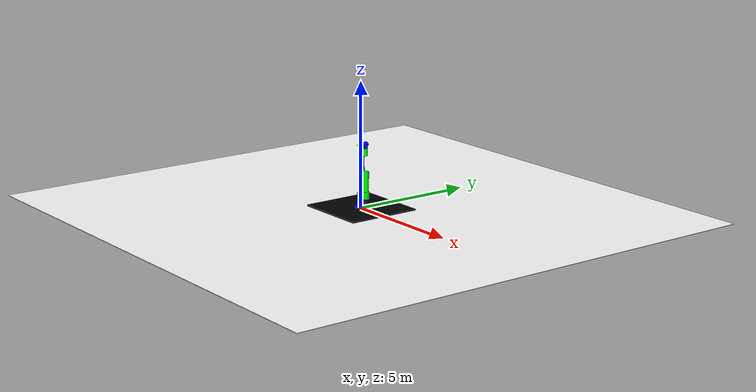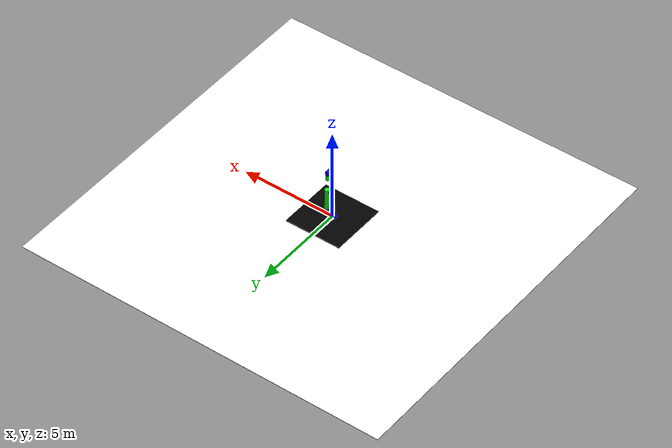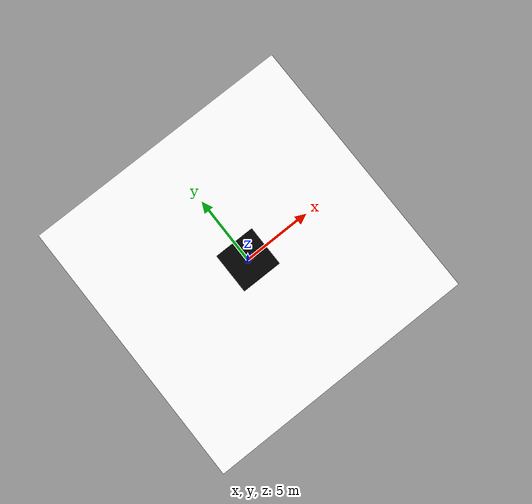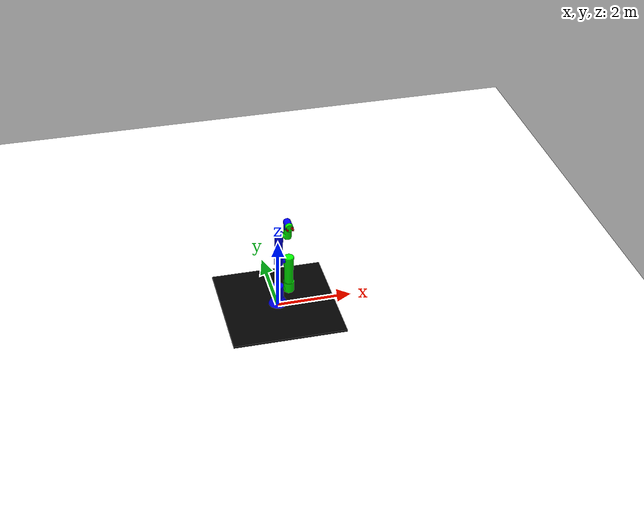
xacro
<?xml version="1.0"?>
<robot name="arm" xmlns:xacro="http://ros.org/wiki/xacro">

    <!-- Defining the colors used in this robot -->
    <material name="Black">
        <color rgba="0 0 0 1"/>
    </material>

    <material name="White">
        <color rgba="1 1 1 1"/>
    </material>

    <material name="Green">
        <color rgba="0 1 0 1"/>
    </material>

    <material name="Blue">
        <color rgba="0 0 1 1"/>
    </material>

    <material name="Red">
        <color rgba="1 0 0 1"/>
    </material>

    <material name="Hide">
        <color rgba="1 1 1 0"/>
    </material>

    <!-- Constants -->
    <xacro:property name="M_PI" value="3.14159"/>

    <!-- Gripper frame -->
    <xacro:property name="grasp_frame_radius" value="0.001" />

    <!-- ///////////////////////////////////////   bottom_joint   ////////////////////////////////////////// -->
    <link name="bottom_link">
	   <inertial>
		  <origin
		    xyz="4.6828E-17 0.024867 -2.2438E-16"
		    rpy="0 0 0" />
		  <mass
		    value="444.11" />
		  <inertia
		    ixx="337.5"
		    ixy="3.3871E-16"
		    ixz="-3.6082E-14"
		    iyy="674.82"
		    iyz="1.3219E-17"
		    izz="337.5" />
		</inertial>
        <visual>
              <origin xyz=" 0 0 -0.05"  rpy="0 0 0"/>
                  <geometry>
                       <box size="20 20 0.02" />
                  </geometry>
              <material name="Hide" />
        </visual>
        <collision>
            <origin xyz=" 0 0 -0.02"  rpy="0 0 0"/>
            <geometry>
                <box size="20 20 0.05" />
            </geometry>
        </collision>
    </link>

    <joint name="bottom_joint" type="fixed">
        <origin xyz="0 0 0" rpy="0 0 0" />
        <parent link="base_link"/>
        <child link="bottom_link"/>
    </joint>

  <link name="base_link">
     <visual>
      <origin
        xyz="0 0 0"
        rpy="0 0 0" />
      <geometry>
        <mesh
          filename="package://marm_description/meshes/base_link.STL" />
      </geometry>
      <material
        name="Black">
        <color
          rgba="0 0 0 1" />
      </material>
    </visual>
    <collision>
      <origin
        xyz="0 0 0"
        rpy="0 0 0" />
      <geometry>
        <mesh
          filename="package://marm_description/meshes/base_link.STL" />
      </geometry>
    </collision>
  </link>
  <link
    name="link1">
    <inertial>
      <origin
        xyz="3.491E-07 -0.0028335 -0.01492"
        rpy="0 0 0" />
      <mass
        value="57.966" />
      <inertia
        ixx="2.5483"
        ixy="-9.0628E-07"
        ixz="1.5304E-06"
        iyy="2.5639"
        iyz="-0.04354"
        izz="1.0444" />
    </inertial>
    <visual>
      <origin
        xyz="0 0 0"
        rpy="0 0 0" />
      <geometry>
        <mesh
          filename="package://marm_description/meshes/link1.STL" />
      </geometry>
      <material
        name="Blue">
        <color
          rgba="0 0 1 1" />
      </material>
    </visual>
    <collision>
      <origin
        xyz="0 0 0"
        rpy="0 0 0" />
      <geometry>
        <mesh
          filename="package://marm_description/meshes/link1.STL" />
      </geometry>
    </collision>
  </link>

  <joint name="joint1"  type="revolute">
    <origin
      xyz="0 0 0.25"
      rpy="3.1416 6.123E-17 1.5708" />
    <parent
      link="base_link" />
    <child
      link="link1" />
    <axis
      xyz="0 0 -1" />
    <limit
      lower="-3.14"
      upper="3.14"
      effort="300"
      velocity="1" />
    <dynamics
      damping="50"
      friction="1" />
  </joint>
  <link
    name="link2">
    <inertial>
      <origin
        xyz="0.0040645 0.50746 2.9447E-08"
        rpy="0 0 0" />
      <mass
        value="57.425" />
      <inertia
        ixx="6.4378"
        ixy="0.19842"
        ixz="-9.7817E-07"
        iyy="0.53245"
        iyz="3.2831E-07"
        izz="6.4921" />
    </inertial>
    <visual>
      <origin
        xyz="0 -0.1 0"
        rpy="0 0 0" />
      <geometry>
        <mesh
          filename="package://marm_description/meshes/link2.STL" />
      </geometry>
      <material
        name="Green">
        <color
          rgba="0 1 0 1" />
      </material>
    </visual>
    <collision>
      <origin
        xyz="0 -0.1 0"
        rpy="0 0 0" />
      <geometry>
        <mesh
          filename="package://marm_description/meshes/link2.STL" />
      </geometry>
    </collision>
  </link>
  <joint
    name="joint2"
    type="revolute">
    <origin
      xyz="0 0.29 -0.28"
      rpy="-1.5708 0 -1.5708" />
    <parent
      link="link1" />
    <child
      link="link2" />
    <axis
      xyz="1 0 0" />
    <limit
      lower="-1.6"
      upper="1.6"
      effort="300"
      velocity="1" />
    <dynamics
      damping="50"
      friction="1" />
  </joint>
  <link
    name="link3">
    <inertial>
      <origin
        xyz="0.0062688 0.45093 -5.9347E-09"
        rpy="0 0 0" />
      <mass
        value="38.36" />
      <inertia
        ixx="3.5596"
        ixy="0.1423"
        ixz="-1.094E-06"
        iyy="0.27636"
        iyz="2.6943E-07"
        izz="3.6045" />
    </inertial>
    <visual>
      <origin
        xyz="0 -0.1 0"
        rpy="0 0 0" />
      <geometry>
        <mesh
          filename="package://marm_description/meshes/link3.STL" />
      </geometry>
      <material
        name="Blue">
        <color
          rgba="0 0 1 1" />
      </material>
    </visual>
    <collision>
      <origin
        xyz="0 -0.1 0"
        rpy="0 0 0" />
      <geometry>
        <mesh
          filename="package://marm_description/meshes/link3.STL" />
      </geometry>
    </collision>
  </link>
  <joint
    name="joint3"
    type="revolute">
    <origin
      xyz="0.27 0.9 0"
      rpy="-3.1416 0 3.1416" />
    <parent
      link="link2" />
    <child
      link="link3" />
    <axis
      xyz="1 0 0" />
    <limit
      lower="-2.62"
      upper="2.62"
      effort="300"
      velocity="1" />
    <dynamics
      damping="50"
      friction="1" />
  </joint>
  <link
    name="link4">
    <inertial>
      <origin
        xyz="8.6704E-09 -0.13203 -0.020954"
        rpy="0 0 0" />
      <mass
        value="10.038" />
      <inertia
        ixx="0.10563"
        ixy="-1.3415E-07"
        ixz="-4.5282E-08"
        iyy="0.071748"
        iyz="0.0067371"
        izz="0.082807" />
    </inertial>
    <visual>
      <origin
        xyz="0 0.1 0"
        rpy="0 0 0" />
      <geometry>
        <mesh
          filename="package://marm_description/meshes/link4.STL" />
      </geometry>
      <material
        name="Green">
        <color
          rgba="0 1 0 1" />
      </material>
    </visual>
    <collision>
      <origin
        xyz="0 0.1 0"
        rpy="0 0 0" />
      <geometry>
        <mesh
          filename="package://marm_description/meshes/link4.STL" />
      </geometry>
    </collision>
  </link>
  <joint
    name="joint4"
    type="revolute">
    <origin
      xyz="0.23 0.8 0"
      rpy="1.5708 -1.5708 1.5708" />
    <parent
      link="link3" />
    <child
      link="link4" />
    <axis
      xyz="0 0 -1" />
    <limit
      lower="-2.62"
      upper="2.62"
      effort="300"
      velocity="1" />
    <dynamics
      damping="50"
      friction="1" />
  </joint>
  <link
    name="link5">
    <inertial>
      <origin
        xyz="1.1124E-08 0.10421 0.041487"
        rpy="0 0 0" />
      <mass
        value="9.417" />
      <inertia
        ixx="0.087332"
        ixy="2.1223E-08"
        ixz="-5.3766E-09"
        iyy="0.08101"
        iyz="0.001687"
        izz="0.055716" />
    </inertial>
    <visual>
      <origin
        xyz="0 -0.1 0"
        rpy="0 ${M_PI} 0" />
      <geometry>
        <mesh
          filename="package://marm_description/meshes/link5.STL" />
      </geometry>
      <material
        name="Blue">
        <color
          rgba="0 0 1 1" />
      </material>
    </visual>
    <collision>
      <origin
        xyz="0 -0.1 0"
        rpy="0 ${M_PI} 0" />
      <geometry>
        <mesh
          filename="package://marm_description/meshes/link5.STL" />
      </geometry>
    </collision>
  </link>
  <joint
    name="joint5"
    type="revolute">
    <origin
      xyz="0 -0.35 0"
      rpy="1.5708 1.5708 0" />
    <parent
      link="link4" />
    <child
      link="link5" />
    <axis
      xyz="0 0 -1" />
    <limit
      lower="-2.62"
      upper="2.62"
      effort="300"
      velocity="1" />
    <dynamics
      damping="50"
      friction="1" />
  </joint>
  <link
    name="link6">
    <inertial>
      <origin
        xyz="-0.0011743 0.077144 0"
        rpy="0 0 0" />
      <mass
        value="3.7469" />
      <inertia
        ixx="0.015466"
        ixy="0.00027657"
        ixz="2.288E-20"
        iyy="0.017439"
        iyz="-3.248E-18"
        izz="0.014407" />
    </inertial>
    <visual>
      <origin
        xyz="0 0 0"
        rpy="0 0 0" />
      <geometry>
        <mesh
          filename="package://marm_description/meshes/link6.STL" />
      </geometry>
      <material
        name="Green">
        <color
          rgba="0 1 0 1" />
      </material>
    </visual>
    <collision>
      <origin
        xyz="0 0 0"
        rpy="0 0 0" />
      <geometry>
        <mesh
          filename="package://marm_description/meshes/link6.STL" />
      </geometry>
    </collision>
  </link>
  <joint
    name="joint6"
    type="revolute">
    <origin
      xyz="0 0.09 0"
      rpy="3.1416 0 3.1416" />
    <parent
      link="link5" />
    <child
      link="link6" />
    <axis
      xyz="0 1 0" />
    <limit
      lower="-6.28"
      upper="6.28"
      effort="300"
      velocity="1" />
    <dynamics
      damping="50"
      friction="1" />
  </joint>
  <link
    name="gripper_finger_link1">
    <inertial>
      <origin
        xyz="-0.0093713 0 -0.02594"
        rpy="0 0 0" />
      <mass
        value="0.1702" />
      <inertia
        ixx="0.00015552"
        ixy="-1.8125E-19"
        ixz="-5.2101E-05"
        iyy="0.00028579"
        iyz="1.2019E-19"
        izz="0.00028702" />
    </inertial>
    <visual>
      <origin
        xyz="0 0 0"
        rpy="0 0 0" />
      <geometry>
        <mesh
          filename="package://marm_description/meshes/gripper_finger_link1.STL" />
      </geometry>
      <material
        name="Red">
        <color
          rgba="1 0 0 1" />
      </material>
    </visual>
    <collision>
      <origin
        xyz="0 0 0"
        rpy="0 0 0" />
      <geometry>
        <mesh
          filename="package://marm_description/meshes/gripper_finger_link1.STL" />
      </geometry>
    </collision>
  </link>
  <joint
    name="finger_joint1"
    type="prismatic">
    <origin
      xyz="0.09 0.15 0"
      rpy="1.5708 0 1.5708" />
    <parent
      link="link6" />
    <child
      link="gripper_finger_link1" />
    <axis
      xyz="0 0 -1" />
    <limit
      lower="0"
      upper="0.05"
      effort="100"
      velocity="1" />
    <dynamics
      damping="50"
      friction="1" />
  </joint>
  <link
    name="gripper_finger_link2">
    <inertial>
      <origin
        xyz="-0.0093713 0 -0.02594"
        rpy="0 0 0" />
      <mass
        value="0.1702" />
      <inertia
        ixx="0.00015552"
        ixy="1.649E-19"
        ixz="-5.2101E-05"
        iyy="0.00028579"
        iyz="6.5356E-20"
        izz="0.00028702" />
    </inertial>
    <visual>
      <origin
        xyz="0 0 0"
        rpy="0 0 0" />
      <geometry>
        <mesh
          filename="package://marm_description/meshes/gripper_finger_link2.STL" />
      </geometry>
      <material
        name="Red">
        <color
          rgba="1 0 0 1" />
      </material>
    </visual>
    <collision>
      <origin
        xyz="0 0 0"
        rpy="0 0 0" />
      <geometry>
        <mesh
          filename="package://marm_description/meshes/gripper_finger_link2.STL" />
      </geometry>
    </collision>
  </link>
  <joint
    name="finger_joint2"
    type="fixed">
    <origin
      xyz="-0.09 0.15 0"
      rpy="-1.5708 0 1.5708" />
    <parent
      link="link6" />
    <child
      link="gripper_finger_link2" />
    <axis
      xyz="0 0 0" />
  </joint>

    <!-- Grasping frame -->
    <link name="grasping_frame"/>

    <joint name="grasping_frame_joint" type="fixed">
      <parent link="link6"/>
      <child link="grasping_frame"/>
      <origin xyz="0.08 0 0" rpy="0 0 0"/>
    </joint>

    <!-- /////////////////////////////////   Gazebo   ////////////////////////////////////// -->
    <gazebo reference="bottom_link">
        <material>Gazebo/White</material>
    </gazebo>
    <gazebo reference="base_link">
        <material>Gazebo/White</material>
    </gazebo>
    <gazebo reference="link1">
        <material>Gazebo/Blue</material>
    </gazebo>
    <gazebo reference="link2">
        <material>Gazebo/White</material>
    </gazebo>
    <gazebo reference="link3">
        <material>Gazebo/Blue</material>
    </gazebo>
    <gazebo reference="link4">
        <material>Gazebo/Black</material>
    </gazebo>
    <gazebo reference="link5">
        <material>Gazebo/White</material>
    </gazebo>
    <gazebo reference="link6">
        <material>Gazebo/Blue</material>
    </gazebo>
    <gazebo reference="gripper_finger_link1">
        <material>Gazebo/White</material>
    </gazebo>
    <gazebo reference="gripper_finger_link2">
        <material>Gazebo/White</material>
    </gazebo>

    <!-- Transmissions for ROS Control -->
    <xacro:macro name="transmission_block" params="joint_name">
        <transmission name="tran1">
            <type>transmission_interface/SimpleTransmission</type>
            <joint name="${joint_name}">
                <hardwareInterface>hardware_interface/PositionJointInterface</hardwareInterface>
            </joint>
            <actuator name="motor1">
                <hardwareInterface>hardware_interface/PositionJointInterface</hardwareInterface>
                <mechanicalReduction>1</mechanicalReduction>
            </actuator>
        </transmission>
    </xacro:macro>

    <xacro:transmission_block joint_name="joint1"/>
    <xacro:transmission_block joint_name="joint2"/>
    <xacro:transmission_block joint_name="joint3"/>
    <xacro:transmission_block joint_name="joint4"/>
    <xacro:transmission_block joint_name="joint5"/>
    <xacro:transmission_block joint_name="joint6"/>
    <xacro:transmission_block joint_name="finger_joint1"/>

    <!-- ros_control plugin -->
    <gazebo>
        <plugin name="gazebo_ros_control" filename="libgazebo_ros_control.so">
            <robotNamespace>/arm</robotNamespace>
        </plugin>
    </gazebo>
</robot>
